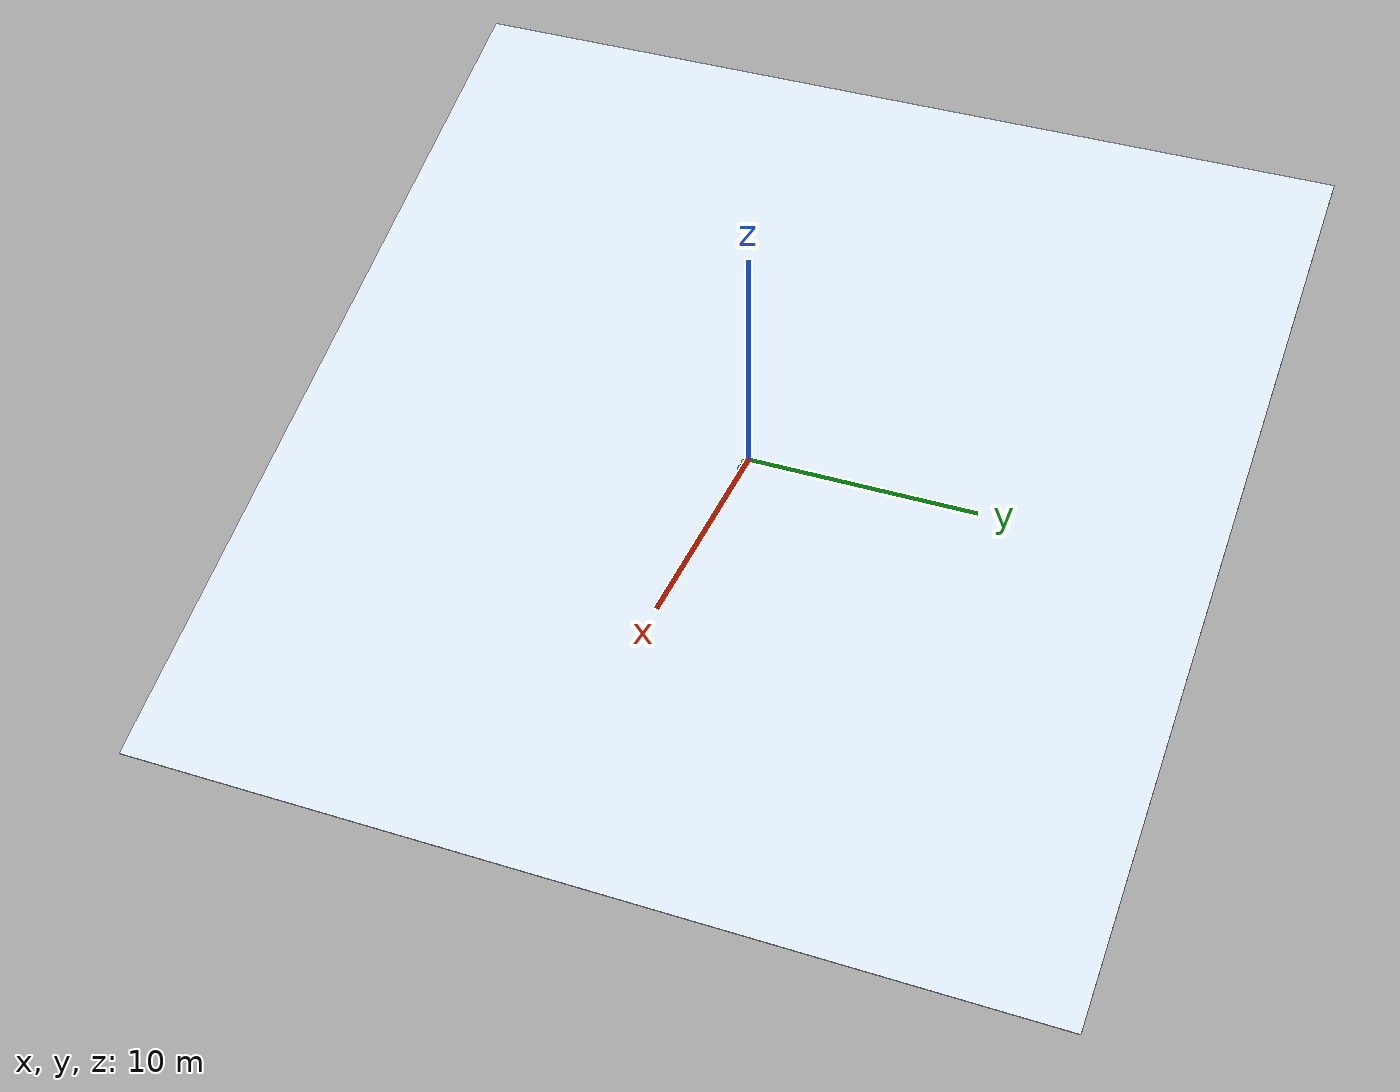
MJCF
<mujoco model="marble cascade">
  <compiler angle="radian" inertiafromgeom="true"/>
  <option timestep="0.002" gravity="0 0 -9.81" integrator="Euler"/>
  <asset>
    <texture name="ramp_checker" type="2d" builtin="checker" width="512" height="512"
      rgb1="0.10 0.19 0.25" rgb2="0.28 0.41 0.47"/>
    <material name="ramp_material" texture="ramp_checker" texrepeat="12 12"
      texuniform="true" reflectance="0.04"/>
  </asset>
  <default>
    <geom condim="1" friction="0 0 0" solref="0.02 1" solimp="0.9 0.95 0.001 0.5 2"/>
    <joint damping="0" armature="0"/>
  </default>
  <worldbody>
    <light name="ramp_light" directional="true" pos="0 0 4" dir="-0.2 0 -1"
      diffuse="0.9 0.9 0.9" specular="0.25 0.25 0.25"/>
    <geom name="tilted_ramp" type="plane" size="20 20 0.1"
      quat="0.98480775 0 0.17364818 0" contype="1" conaffinity="2"
      material="ramp_material" rgba="0.85 0.9 0.95 1"/>
    <body name="marble_a" pos="0 0 0.18">
      <freejoint/>
      <geom name="marble_a_geom" type="sphere" size="0.14" mass="0.8"
        contype="2" conaffinity="3" rgba="0.95 0.31 0.19 1"/>
    </body>
    <body name="marble_b" pos="0.43 0 0.18">
      <freejoint/>
      <geom name="marble_b_geom" type="sphere" size="0.14" mass="0.8"
        contype="2" conaffinity="3" rgba="0.98 0.72 0.24 1"/>
    </body>
    <body name="marble_c" pos="0.86 0 0.18">
      <freejoint/>
      <geom name="marble_c_geom" type="sphere" size="0.14" mass="0.8"
        contype="2" conaffinity="3" rgba="0.24 0.62 0.87 1"/>
    </body>
  </worldbody>
</mujoco>
